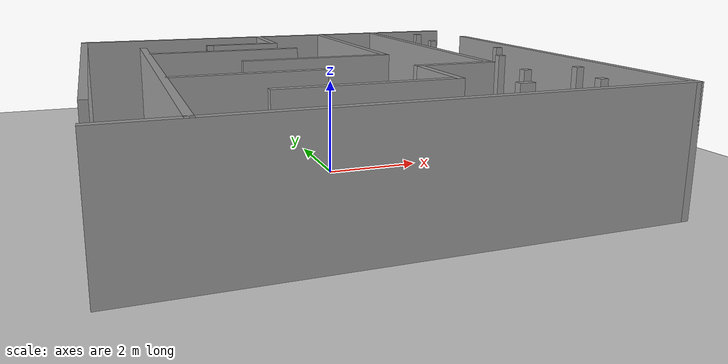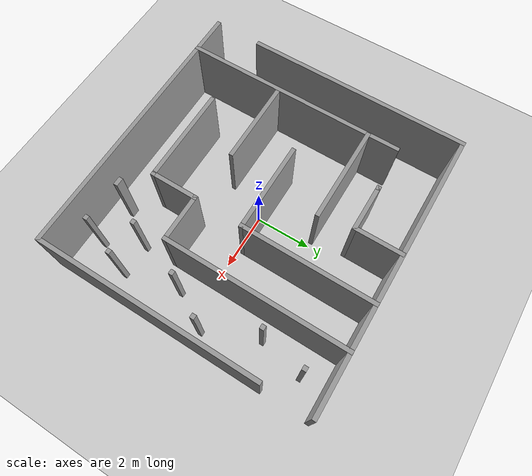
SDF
<?xml version='1.0'?>
<sdf version='1.6'>
	<world name="race_map">
    <model name='race_map'>
      <pose frame=''>0 0 0 0 0 0</pose>
      <link name='Wall_0'>
        <collision name='Wall_0_Collision'>
          <geometry>
            <box>
              <size>10 0.15 2.5</size>
            </box>
          </geometry>
          <pose frame=''>0 0 1.25 0 -0 0</pose>
        </collision>
        <visual name='Wall_0_Visual'>
          <pose frame=''>0 0 1.25 0 -0 0</pose>
          <geometry>
            <box>
              <size>10 0.15 2.5</size>
            </box>
          </geometry>
          <material>
            <script>
              <uri>file://media/materials/scripts/gazebo.material</uri>
              <name>Gazebo/Grey</name>
            </script>
            <ambient>1 1 1 1</ambient>
          </material>
          <meta>
            <layer>0</layer>
          </meta>
        </visual>
        <pose frame=''>-0 -4.8 0 0 -0 0</pose>
      </link>
      <link name='Wall_19'>
        <collision name='Wall_19_Collision'>
          <geometry>
            <box>
              <size>4.75 0.15 2.5</size>
            </box>
          </geometry>
          <pose frame=''>0 0 1.25 0 -0 0</pose>
        </collision>
        <visual name='Wall_19_Visual'>
          <pose frame=''>0 0 1.25 0 -0 0</pose>
          <geometry>
            <box>
              <size>4.75 0.15 2.5</size>
            </box>
          </geometry>
          <material>
            <script>
              <uri>file://media/materials/scripts/gazebo.material</uri>
              <name>Gazebo/Grey</name>
            </script>
            <ambient>1 1 1 1</ambient>
          </material>
          <meta>
            <layer>0</layer>
          </meta>
        </visual>
        <pose frame=''>1.32588 2.49771 0 0 -0 -1.5708</pose>
      </link>
      <link name='Wall_2'>
        <collision name='Wall_2_Collision'>
          <geometry>
            <box>
              <size>10 0.15 2.5</size>
            </box>
          </geometry>
          <pose frame=''>0 0 1.25 0 -0 0</pose>
        </collision>
        <visual name='Wall_2_Visual'>
          <pose frame=''>0 0 1.25 0 -0 0</pose>
          <geometry>
            <box>
              <size>10 0.15 2.5</size>
            </box>
          </geometry>
          <material>
            <script>
              <uri>file://media/materials/scripts/gazebo.material</uri>
              <name>Gazebo/Grey</name>
            </script>
            <ambient>1 1 1 1</ambient>
          </material>
          <meta>
            <layer>0</layer>
          </meta>
        </visual>
        <pose frame=''>-0 4.8 0 0 -0 3.14159</pose>
      </link>
      <link name='Wall_20'>
        <collision name='Wall_20_Collision'>
          <geometry>
            <box>
              <size>3.25 0.15 2.5</size>
            </box>
          </geometry>
          <pose frame=''>0 0 1.25 0 -0 0</pose>
        </collision>
        <visual name='Wall_20_Visual'>
          <pose frame=''>0 0 1.25 0 -0 0</pose>
          <geometry>
            <box>
              <size>3.25 0.15 2.5</size>
            </box>
          </geometry>
          <material>
            <script>
              <uri>file://media/materials/scripts/gazebo.material</uri>
              <name>Gazebo/Grey</name>
            </script>
            <ambient>1 1 1 1</ambient>
          </material>
          <meta>
            <layer>0</layer>
          </meta>
        </visual>
        <pose frame=''>-0.224124 0.197708 0 0 -0 3.14159</pose>
      </link>
      <link name='Wall_23'>
        <collision name='Wall_23_Collision'>
          <geometry>
            <box>
              <size>6.5 0.15 2.5</size>
            </box>
          </geometry>
          <pose frame=''>0 0 1.25 0 -0 0</pose>
        </collision>
        <visual name='Wall_23_Visual'>
          <pose frame=''>0 0 1.25 0 -0 0</pose>
          <geometry>
            <box>
              <size>6.5 0.15 2.5</size>
            </box>
          </geometry>
          <material>
            <script>
              <uri>file://media/materials/scripts/gazebo.material</uri>
              <name>Gazebo/Grey</name>
            </script>
            <ambient>1 1 1 1</ambient>
          </material>
          <meta>
            <layer>0</layer>
          </meta>
        </visual>
        <pose frame=''>2.89876 1.62271 0 0 -0 -1.5708</pose>
      </link>
      <link name='Wall_24'>
        <collision name='Wall_24_Collision'>
          <geometry>
            <box>
              <size>1.75 0.15 2.5</size>
            </box>
          </geometry>
          <pose frame=''>0 0 1.25 0 -0 0</pose>
        </collision>
        <visual name='Wall_24_Visual'>
          <pose frame=''>0 0 1.25 0 -0 0</pose>
          <geometry>
            <box>
              <size>1.75 0.15 2.5</size>
            </box>
          </geometry>
          <material>
            <script>
              <uri>file://media/materials/scripts/gazebo.material</uri>
              <name>Gazebo/Grey</name>
            </script>
            <ambient>1 1 1 1</ambient>
          </material>
          <meta>
            <layer>0</layer>
          </meta>
        </visual>
        <pose frame=''>2.09876 -1.55229 0 0 -0 3.14159</pose>
      </link>
      <link name='Wall_26'>
        <collision name='Wall_26_Collision'>
          <geometry>
            <box>
              <size>3 0.15 2.5</size>
            </box>
          </geometry>
          <pose frame=''>0 0 1.25 0 -0 0</pose>
        </collision>
        <visual name='Wall_26_Visual'>
          <pose frame=''>0 0 1.25 0 -0 0</pose>
          <geometry>
            <box>
              <size>3 0.15 2.5</size>
            </box>
          </geometry>
          <material>
            <script>
              <uri>file://media/materials/scripts/gazebo.material</uri>
              <name>Gazebo/Grey</name>
            </script>
            <ambient>1 1 1 1</ambient>
          </material>
          <meta>
            <layer>0</layer>
          </meta>
        </visual>
        <pose frame=''>-2.06029 -1.42443 0 0 -0 0</pose>
      </link>
      <link name='Wall_28'>
        <collision name='Wall_28_Collision'>
          <geometry>
            <box>
              <size>1.75 0.15 2.5</size>
            </box>
          </geometry>
          <pose frame=''>0 0 1.25 0 -0 0</pose>
        </collision>
        <visual name='Wall_28_Visual'>
          <pose frame=''>0 0 1.25 0 -0 0</pose>
          <geometry>
            <box>
              <size>1.75 0.15 2.5</size>
            </box>
          </geometry>
          <material>
            <script>
              <uri>file://media/materials/scripts/gazebo.material</uri>
              <name>Gazebo/Grey</name>
            </script>
            <ambient>1 1 1 1</ambient>
          </material>
          <meta>
            <layer>0</layer>
          </meta>
        </visual>
        <pose frame=''>1.29876 -2.35229 0 0 -0 -1.5708</pose>
      </link>
      <link name='Wall_29'>
        <collision name='Wall_29_Collision'>
          <geometry>
            <box>
              <size>3.5 0.15 2.5</size>
            </box>
          </geometry>
          <pose frame=''>0 0 1.25 0 -0 0</pose>
        </collision>
        <visual name='Wall_29_Visual'>
          <pose frame=''>0 0 1.25 0 -0 0</pose>
          <geometry>
            <box>
              <size>3.5 0.15 2.5</size>
            </box>
          </geometry>
          <material>
            <script>
              <uri>file://media/materials/scripts/gazebo.material</uri>
              <name>Gazebo/Grey</name>
            </script>
            <ambient>1 1 1 1</ambient>
          </material>
          <meta>
            <layer>0</layer>
          </meta>
        </visual>
        <pose frame=''>-0.376242 -3.15229 0 0 -0 3.14159</pose>
      </link>
      <link name='Wall_3'>
        <collision name='Wall_3_Collision'>
          <geometry>
            <box>
              <size>8 0.15 2.5</size>
            </box>
          </geometry>
          <pose frame=''>0 0 1.25 0 -0 0</pose>
        </collision>
        <visual name='Wall_3_Visual'>
          <pose frame=''>0 0 1.25 0 -0 0</pose>
          <geometry>
            <box>
              <size>8 0.15 2.5</size>
            </box>
          </geometry>
          <material>
            <script>
              <uri>file://media/materials/scripts/gazebo.material</uri>
              <name>Gazebo/Grey</name>
            </script>
            <ambient>1 1 1 1</ambient>
          </material>
          <meta>
            <layer>0</layer>
          </meta>
        </visual>
        <pose frame=''>-4.925 0.875 0 0 -0 -1.5708</pose>
      </link>
      <link name='Wall_33'>
        <collision name='Wall_33_Collision'>
          <geometry>
            <box>
              <size>3.5 0.15 2.5</size>
            </box>
          </geometry>
          <pose frame=''>0 0 1.25 0 -0 0</pose>
        </collision>
        <visual name='Wall_33_Visual'>
          <pose frame=''>0 0 1.25 0 -0 0</pose>
          <geometry>
            <box>
              <size>3.5 0.15 2.5</size>
            </box>
          </geometry>
          <material>
            <script>
              <uri>file://media/materials/scripts/gazebo.material</uri>
              <name>Gazebo/Grey</name>
            </script>
            <ambient>1 1 1 1</ambient>
          </material>
          <meta>
            <layer>0</layer>
          </meta>
        </visual>
        <pose frame=''>-1.9149 1.99759 0 0 -0 0</pose>
      </link>
      <link name='Wall_37'>
        <collision name='Wall_37_Collision'>
          <geometry>
            <box>
              <size>1.75 0.15 2.5</size>
            </box>
          </geometry>
          <pose frame=''>0 0 1.25 0 -0 0</pose>
        </collision>
        <visual name='Wall_37_Visual'>
          <pose frame=''>0 0 1.25 0 -0 0</pose>
          <geometry>
            <box>
              <size>1.75 0.15 2.5</size>
            </box>
          </geometry>
          <material>
            <script>
              <uri>file://media/materials/scripts/gazebo.material</uri>
              <name>Gazebo/Grey</name>
            </script>
            <ambient>1 1 1 1</ambient>
          </material>
          <meta>
            <layer>0</layer>
          </meta>
        </visual>
        <pose frame=''>-0.428118 3.97317 0 0 -0 -1.5708</pose>
      </link>
      <link name='Wall_38'>
        <collision name='Wall_38_Collision'>
          <geometry>
            <box>
              <size>1.75 0.15 2.5</size>
            </box>
          </geometry>
          <pose frame=''>0 0 1.25 0 -0 0</pose>
        </collision>
        <visual name='Wall_38_Visual'>
          <pose frame=''>0 0 1.25 0 -0 0</pose>
          <geometry>
            <box>
              <size>1.75 0.15 2.5</size>
            </box>
          </geometry>
          <material>
            <script>
              <uri>file://media/materials/scripts/gazebo.material</uri>
              <name>Gazebo/Grey</name>
            </script>
            <ambient>1 1 1 1</ambient>
          </material>
          <meta>
            <layer>0</layer>
          </meta>
        </visual>
        <pose frame=''>-1.22812 3.17317 0 0 -0 3.14159</pose>
      </link>
      <link name='Wall_39'>
        <collision name='Wall_39_Collision'>
          <geometry>
            <box>
              <size>0.16 0.15 2.5</size>
            </box>
          </geometry>
          <pose frame=''>0 0 1.25 0 -0 0</pose>
        </collision>
        <visual name='Wall_39_Visual'>
          <pose frame=''>0 0 1.25 0 -0 0</pose>
          <geometry>
            <box>
              <size>0.16 0.15 2.5</size>
            </box>
          </geometry>
          <material>
            <script>
              <uri>file://media/materials/scripts/gazebo.material</uri>
              <name>Gazebo/Grey</name>
            </script>
            <ambient>0 0 0 1</ambient>
          </material>
          <meta>
            <layer>0</layer>
          </meta>
        </visual>
        <pose frame=''>-2.02312 3.17317 0 0 -0 0</pose>
      </link>
      <link name='Wall_41'>
        <collision name='Wall_41_Collision'>
          <geometry>
            <box>
              <size>0.16 0.15 2.5</size>
            </box>
          </geometry>
          <pose frame=''>0 0 1.25 0 -0 0</pose>
        </collision>
        <visual name='Wall_41_Visual'>
          <pose frame=''>0 0 1.25 0 -0 0</pose>
          <geometry>
            <box>
              <size>0.16 0.15 2.5</size>
            </box>
          </geometry>
          <material>
            <script>
              <uri>file://media/materials/scripts/gazebo.material</uri>
              <name>Gazebo/Grey</name>
            </script>
            <ambient>0 0 0 1</ambient>
          </material>
          <meta>
            <layer>0</layer>
          </meta>
        </visual>
        <pose frame=''>2.96989 -2.69769 0 0 -0 0</pose>
      </link>
      <link name='Wall_44'>
        <collision name='Wall_44_Collision'>
          <geometry>
            <box>
              <size>0.3 0.15 2.5</size>
            </box>
          </geometry>
          <pose frame=''>0 0 1.25 0 -0 0</pose>
        </collision>
        <visual name='Wall_44_Visual'>
          <pose frame=''>0 0 1.25 0 -0 0</pose>
          <geometry>
            <box>
              <size>0.3 0.15 2.5</size>
            </box>
          </geometry>
          <material>
            <script>
              <uri>file://media/materials/scripts/gazebo.material</uri>
              <name>Gazebo/Grey</name>
            </script>
            <ambient>0 0 0 1</ambient>
          </material>
          <meta>
            <layer>0</layer>
          </meta>
        </visual>
        <pose frame=''>2.11687 -3.93334 0 0 -0 3.14159</pose>
      </link>
      <link name='Wall_47'>
        <collision name='Wall_47_Collision'>
          <geometry>
            <box>
              <size>0.16 0.15 2.5</size>
            </box>
          </geometry>
          <pose frame=''>0 0 1.25 0 -0 0</pose>
        </collision>
        <visual name='Wall_47_Visual'>
          <pose frame=''>0 0 1.25 0 -0 0</pose>
          <geometry>
            <box>
              <size>0.16 0.15 2.5</size>
            </box>
          </geometry>
          <material>
            <script>
              <uri>file://media/materials/scripts/gazebo.material</uri>
              <name>Gazebo/Grey</name>
            </script>
            <ambient>0 0 0 1</ambient>
          </material>
          <meta>
            <layer>0</layer>
          </meta>
        </visual>
        <pose frame=''>3.61334 -4.01551 0 0 -0 0</pose>
      </link>
      <link name='Wall_48'>
        <collision name='Wall_48_Collision'>
          <geometry>
            <box>
              <size>0.16 0.15 2.5</size>
            </box>
          </geometry>
          <pose frame=''>0 0 1.25 0 -0 0</pose>
        </collision>
        <visual name='Wall_48_Visual'>
          <pose frame=''>0 0 1.25 0 -0 0</pose>
          <geometry>
            <box>
              <size>0.16 0.15 2.5</size>
            </box>
          </geometry>
          <material>
            <script>
              <uri>file://media/materials/scripts/gazebo.material</uri>
              <name>Gazebo/Grey</name>
            </script>
            <ambient>0 0 0 1</ambient>
          </material>
          <meta>
            <layer>0</layer>
          </meta>
        </visual>
        <pose frame=''>4.12221 -2.74333 0 0 -0 0</pose>
      </link>
      <link name='Wall_49'>
        <collision name='Wall_49_Collision'>
          <geometry>
            <box>
              <size>0.16 0.15 2.5</size>
            </box>
          </geometry>
          <pose frame=''>0 0 1.25 0 -0 0</pose>
        </collision>
        <visual name='Wall_49_Visual'>
          <pose frame=''>0 0 1.25 0 -0 0</pose>
          <geometry>
            <box>
              <size>0.16 0.15 2.5</size>
            </box>
          </geometry>
          <material>
            <script>
              <uri>file://media/materials/scripts/gazebo.material</uri>
              <name>Gazebo/Grey</name>
            </script>
            <ambient>0 0 0 1</ambient>
          </material>
          <meta>
            <layer>0</layer>
          </meta>
        </visual>
        <pose frame=''>3.6596 -0.754095 0 0 -0 0</pose>
      </link>
      <link name='Wall_5'>
        <collision name='Wall_5_Collision'>
          <geometry>
            <box>
              <size>8 0.15 2.5</size>
            </box>
          </geometry>
          <pose frame=''>0 0 1.25 0 -0 0</pose>
        </collision>
        <visual name='Wall_5_Visual'>
          <pose frame=''>0 0 1.25 0 -0 0</pose>
          <geometry>
            <box>
              <size>8 0.15 2.5</size>
            </box>
          </geometry>
          <material>
            <script>
              <uri>file://media/materials/scripts/gazebo.material</uri>
              <name>Gazebo/Grey</name>
            </script>
            <ambient>1 1 1 1</ambient>
          </material>
          <meta>
            <layer>0</layer>
          </meta>
        </visual>
        <pose frame=''>4.925 -0.875 0 0 -0 1.5708</pose>
      </link>
      <link name='Wall_50'>
        <collision name='Wall_50_Collision'>
          <geometry>
            <box>
              <size>0.16 0.15 2.5</size>
            </box>
          </geometry>
          <pose frame=''>0 0 1.25 0 -0 0</pose>
        </collision>
        <visual name='Wall_50_Visual'>
          <pose frame=''>0 0 1.25 0 -0 0</pose>
          <geometry>
            <box>
              <size>0.16 0.15 2.5</size>
            </box>
          </geometry>
          <material>
            <script>
              <uri>file://media/materials/scripts/gazebo.material</uri>
              <name>Gazebo/Grey</name>
            </script>
            <ambient>0 0 0 1</ambient>
          </material>
          <meta>
            <layer>0</layer>
          </meta>
        </visual>
        <pose frame=''>4.39978 0.518088 0 0 -0 0</pose>
      </link>
      <link name='Wall_51'>
        <collision name='Wall_51_Collision'>
          <geometry>
            <box>
              <size>0.16 0.15 2.5</size>
            </box>
          </geometry>
          <pose frame=''>0 0 1.25 0 -0 0</pose>
        </collision>
        <visual name='Wall_51_Visual'>
          <pose frame=''>0 0 1.25 0 -0 0</pose>
          <geometry>
            <box>
              <size>0.16 0.15 2.5</size>
            </box>
          </geometry>
          <material>
            <script>
              <uri>file://media/materials/scripts/gazebo.material</uri>
              <name>Gazebo/Grey</name>
            </script>
            <ambient>0 0 0 1</ambient>
          </material>
          <meta>
            <layer>0</layer>
          </meta>
        </visual>
        <pose frame=''>3.61334 2.36854 0 0 -0 0</pose>
      </link>
      <link name='Wall_52'>
        <collision name='Wall_52_Collision'>
          <geometry>
            <box>
              <size>0.16 0.15 2.5</size>
            </box>
          </geometry>
          <pose frame=''>0 0 1.25 0 -0 0</pose>
        </collision>
        <visual name='Wall_52_Visual'>
          <pose frame=''>0 0 1.25 0 -0 0</pose>
          <geometry>
            <box>
              <size>0.16 0.15 2.5</size>
            </box>
          </geometry>
          <material>
            <script>
              <uri>file://media/materials/scripts/gazebo.material</uri>
              <name>Gazebo/Grey</name>
            </script>
            <ambient>0 0 0 1</ambient>
          </material>
          <meta>
            <layer>0</layer>
          </meta>
        </visual>
        <pose frame=''>3.9603 3.94142 0 0 -0 0</pose>
      </link>
      <link name='Wall_7'>
        <collision name='Wall_7_Collision'>
          <geometry>
            <box>
              <size>8 0.15 2.5</size>
            </box>
          </geometry>
          <pose frame=''>0 0 1.25 0 -0 0</pose>
        </collision>
        <visual name='Wall_7_Visual'>
          <pose frame=''>0 0 1.25 0 -0 0</pose>
          <geometry>
            <box>
              <size>8 0.15 2.5</size>
            </box>
          </geometry>
          <material>
            <script>
              <uri>file://media/materials/scripts/gazebo.material</uri>
              <name>Gazebo/Grey</name>
            </script>
            <ambient>1 1 1 1</ambient>
          </material>
          <meta>
            <layer>0</layer>
          </meta>
        </visual>
        <pose frame=''>-3.60681 -0.871655 0 0 -0 1.5708</pose>
      </link>
      <static>1</static>
    </model>
    <!-- A global light source -->
		<include>
			<uri>model://sun</uri>
		</include>
		<!-- A ground plane -->
		<include>
			<uri>model://ground_plane</uri>
		</include>
	</world>
</sdf>
